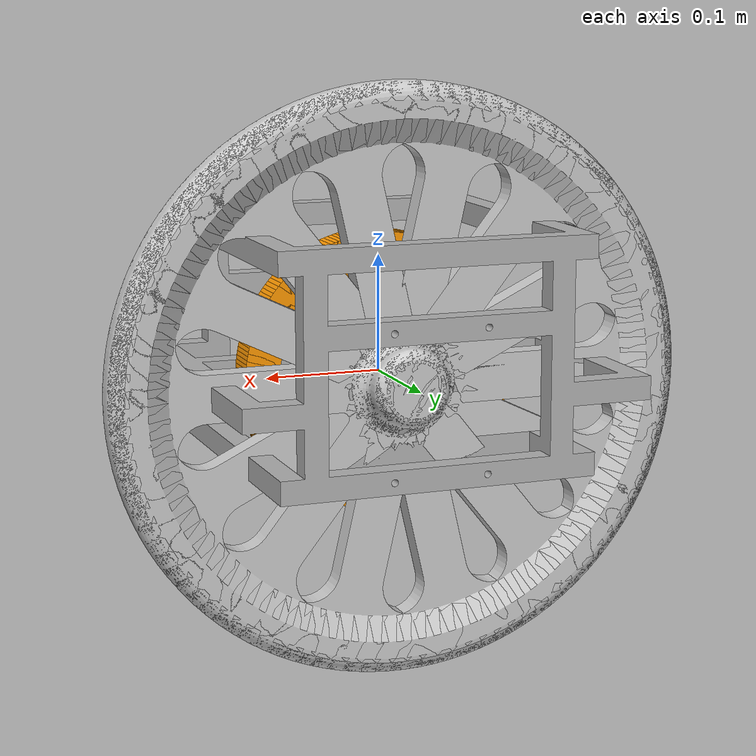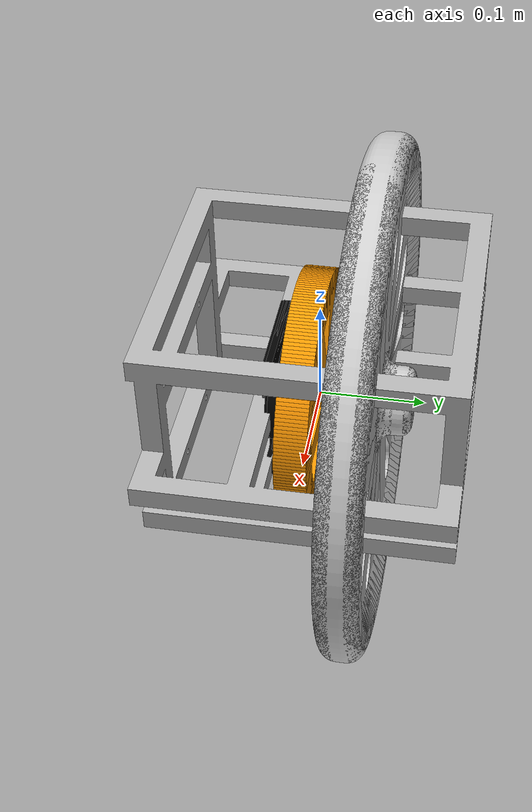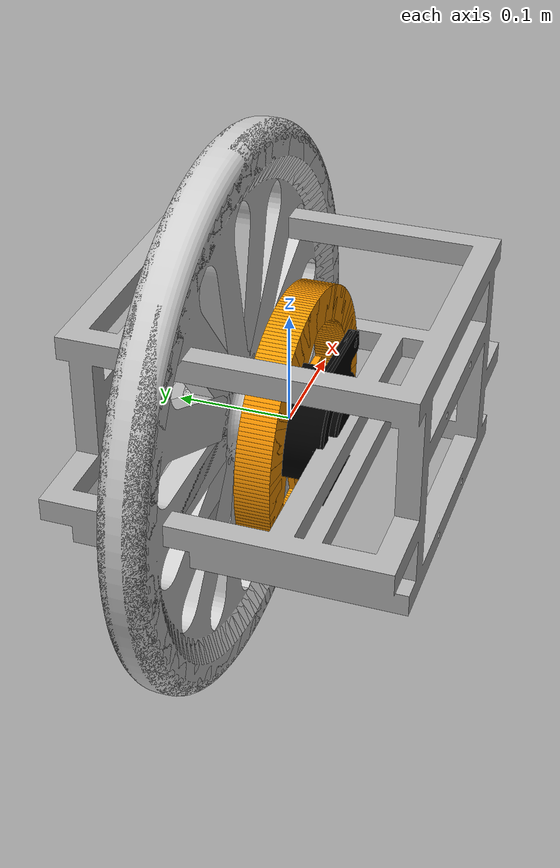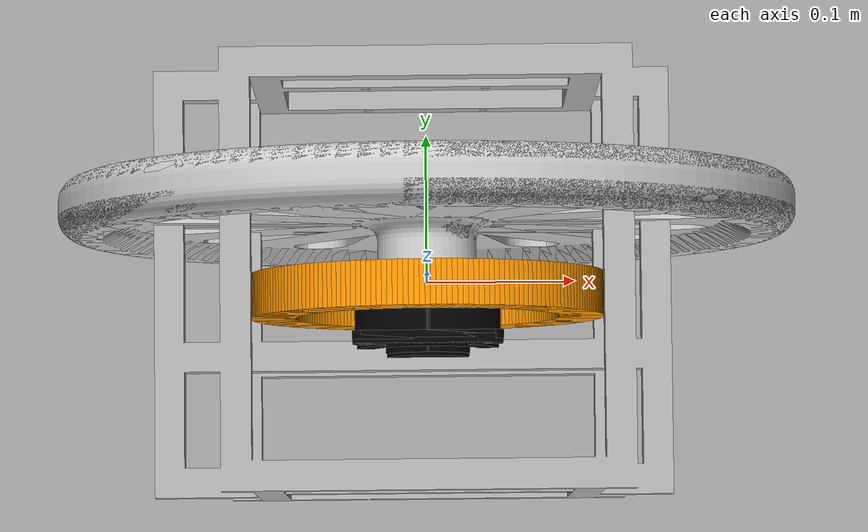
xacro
<?xml version="1.0" encoding="utf-8"?>

<robot xmlns:xacro="http://www.ros.org/wiki/xacro" name="gyrosse">
  <xacro:property name="package_name" value="gyrosse_description"/>

  <!-- Enable setting arguments from the launch file -->
  <xacro:arg name="name" default="gyrosse"/>

  <!-- import main macro -->
  <xacro:include filename="$(find ${package_name})/urdf/include/gyrosse_macro.xacro"/>

  <!-- parameters -->
  <xacro:arg name="ifname_can" default="can0" />
  <xacro:arg name="use_fake_hardware" default="false" />
  <xacro:arg name="fake_sensor_commands" default="false" />

  <xacro:gyrosse_robot
    ifname_can="$(arg ifname_can)"
    use_fake_hardware="$(arg use_fake_hardware)"
    fake_sensor_commands="$(arg fake_sensor_commands)">
  </xacro:gyrosse_robot>

</robot>

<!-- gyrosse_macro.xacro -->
<robot xmlns:xacro="http://wiki.ros.org/xacro">
  <xacro:macro name="gyrosse_robot" params="
    ifname_can:=can0
    use_fake_hardware:=false
    fake_sensor_commands:=false
    ">

    <!-- Import Rviz colors -->
    <xacro:include filename="$(find gyrosse_description)/urdf/include/materials.xacro" />

    <!-- Gyrosse-->
    <xacro:include filename="$(find gyrosse_description)/urdf/gyrosse_joints_links.xacro" />

    <!-- ros2 control include -->
    <xacro:include filename="$(find gyrosse_description)/urdf/ros2_control.xacro"/>
    <xacro:ros2_control ifname_can="${ifname_can}"
    use_fake_hardware="${use_fake_hardware}"
    fake_sensor_commands="${fake_sensor_commands}"
    />

  </xacro:macro>
</robot>

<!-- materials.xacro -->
<robot xmlns:xacro="http://www.ros.org/wiki/xacro" >

<material name="silver">
  <color rgba="0.700 0.700 0.700 1.000"/>
</material>
 <material name="black">
    <color rgba="0 0 0 1" />
  </material>
  <material name="grey">
    <color rgba="0.8 0.8 0.8 1" />
  </material>
  <material name="orange">
    <color rgba="1 0.6 0 1" />
  </material>
  <material name="white">
    <color rgba="1 1 1 1" />
  </material>

</robot>

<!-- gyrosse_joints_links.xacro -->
<robot name="gyrosse" xmlns:xacro="http://www.ros.org/wiki/xacro">

<xacro:include filename="$(find ${package_name})/urdf/include/common_macros.xacro" />

<xacro:chassis name="base_link"/>

<xacro:motor_wheel name="motor_wheel_right"
                   joint_origin_xyz="-0.145 0.06 0.04" joint_rpy="0 0 0"/>

<xacro:motor_wheel name="motor_wheel_left"
                   joint_origin_xyz="0.145 0.06 -0.04" joint_rpy="0 ${pi} 0"/>

<xacro:motor_flywheel name="motor_flywheel_right"
                      joint_origin_xyz="-0.125 0.06 0.04" joint_rpy="0 0 0"/>

<xacro:motor_flywheel name="motor_flywheel_left"
                      joint_origin_xyz="0.125 0.06 -0.04" joint_rpy="0 ${pi} 0"/>

<xacro:flywheel name="flywheel_right"/>
<xacro:flywheel name="flywheel_left"/>

<xacro:wheel name="wheel_right"/>
<xacro:wheel name="wheel_left"/>

</robot>

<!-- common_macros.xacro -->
<robot xmlns:xacro="http://www.ros.org/wiki/xacro">

<!--chassis macro -->
  <xacro:macro name="chassis" params="name">
    <link name="${name}">
    <inertial>
      <origin xyz="0 0 0" rpy="0 0 0"/>
      <mass value="8.4"/>
      <inertia ixx="0.1235" iyy="0.173" izz="0.121" ixy="0" iyz="0.00024" ixz="0"/>
    </inertial>
    <visual>
      <origin xyz="0 0 0" rpy="0 0 0"/>
      <geometry>
        <mesh filename="file://$(find ${package_name})/meshes/chassis.stl" scale="0.001 0.001 0.001"/>
      </geometry>
      <material name="silver"/>
    </visual>
    <collision>
      <origin xyz="0 0 0" rpy="0 0 0"/>
      <geometry>
        <mesh filename="file://$(find ${package_name})/meshes/chassis.stl" scale="0.001 0.001 0.001"/>
      </geometry>
    </collision>
    </link>
  </xacro:macro>

<!--motor wheel macro -->
  <xacro:macro name="motor_wheel" params="name joint_origin_xyz joint_rpy">
    <link name="${name}">
      <inertial>
        <origin xyz="-0.017 -0.06 -0.04"  rpy="0 0 0"/>
        <mass value="1.25"/>
        <inertia ixx="0.00215" iyy="0.001" izz="0.0016" ixy="0" iyz="0" ixz="0"/>
      </inertial>
      <visual>
        <origin xyz="0.145 -0.06 -0.04"  rpy="0 0 0"/>
        <geometry>
          <mesh filename="file://$(find ${package_name})/meshes/motor_wheel.stl" scale="0.001 0.001 0.001"/>
        </geometry>
        <material name="black"/>
      </visual>
      <collision>
        <origin xyz="0.145 -0.06 -0.04"  rpy="0 0 0"/>
        <geometry>
          <mesh filename="file://$(find ${package_name})/meshes/motor_wheel.stl" scale="0.001 0.001 0.001"/>
        </geometry>
      </collision>
    </link>
    <joint name="joint_${name}" type="fixed">
      <origin xyz="${joint_origin_xyz}" rpy="${joint_rpy}"/>
      <parent link="base_link"/>
      <child link="${name}"/>
    </joint>
  </xacro:macro>

<!--motor flywheel macro -->
  <xacro:macro name="motor_flywheel" params="name joint_origin_xyz joint_rpy">
    <link name="${name}">
      <inertial>
        <origin xyz="0.0158 -0.06 -0.04"  rpy="0 0 0"/>
        <mass value="1.2"/>
        <inertia ixx="0.0020" iyy="0.001" izz="0.0015" ixy="0" iyz="0" ixz="0"/>
      </inertial>
      <visual>
        <origin xyz="0.125 -0.06 -0.04"  rpy="0 0 0"/>
        <geometry>
          <mesh filename="file://$(find ${package_name})/meshes/motor_flywheel.stl" scale="0.001 0.001 0.001"/>
        </geometry>
        <material name="black"/>
      </visual>
      <collision>
        <origin xyz="0.125 -0.06 -0.04"  rpy="0 0 0"/>
        <geometry>
          <mesh filename="file://$(find ${package_name})/meshes/motor_flywheel.stl" scale="0.001 0.001 0.001"/>
        </geometry>
      </collision>
    </link>
    <joint name="joint_${name}" type="fixed">
      <origin xyz="${joint_origin_xyz}" rpy="${joint_rpy}"/>
      <parent link="base_link"/>
      <child link="${name}"/>
    </joint>
  </xacro:macro>

<!-- wheel macro -->
  <xacro:macro name="wheel" params="name">
    <link name="${name}">
      <inertial>
        <origin xyz="-0.049 0 0" rpy="0 0 0"/>
        <mass value="1.2"/>
        <inertia ixx="0.042" iyy="0.021" izz="0.021" ixy="0" iyz="0" ixz="0"/>
      </inertial>
      <visual>
        <origin xyz="0.1905 0 0" rpy="0 0 0"/>
        <geometry>
          <mesh filename="file://$(find ${package_name})/meshes/wheel.stl" scale="0.001 0.001 0.001"/>
        </geometry>
        <material name="grey"/>
      </visual>
      <collision>
        <origin xyz="0.1905 0 0" rpy="0 0 0"/>
        <geometry>
          <mesh filename="file://$(find ${package_name})/meshes/wheel.stl" scale="0.001 0.001 0.001"/>
        </geometry>
      </collision>
    </link>
    <joint name="joint_${name}" type="continuous">
      <origin xyz="-0.0455 -0.06 -0.04" rpy="0 0 0"/>
      <parent link="motor_${name}"/>
      <child link="${name}"/>
      <axis xyz="1.0 0 0"/>
    </joint>
  </xacro:macro>

<!-- flywheel macro -->
  <xacro:macro name="flywheel" params="name">
    <link name="${name}">
      <inertial>
        <origin xyz="-0.008 0 0" rpy="0 0 0"/>
        <mass value="1.8"/>
        <inertia ixx="0.0185" iyy="0.01" izz="0.01" ixy="0" iyz="0" ixz="0"/>
      </inertial>
      <visual>
        <origin xyz="0.0825 0 0" rpy="0 0 0"/>
        <geometry>
          <mesh filename="file://$(find ${package_name})/meshes/flywheel.stl" scale="0.001 0.001 0.001"/>
        </geometry>
        <material name="orange"/>
      </visual>
      <collision>
        <origin xyz="0.0825 0 0" rpy="0 0 0"/>
        <geometry>
          <mesh filename="file://$(find ${package_name})/meshes/flywheel.stl" scale="0.001 0.001 0.001"/>
        </geometry>
      </collision>
    </link>
    <joint name="joint_${name}" type="continuous">
      <origin xyz="0.0425 -0.06 -0.04" rpy="0 0 0"/>
      <parent link="motor_${name}"/>
      <child link="${name}"/>
      <axis xyz="1.0 0 0"/>
    </joint>
  </xacro:macro>
</robot>
